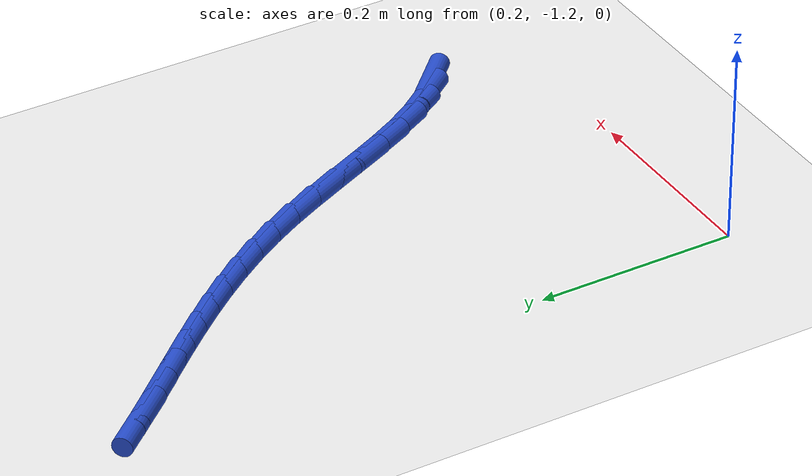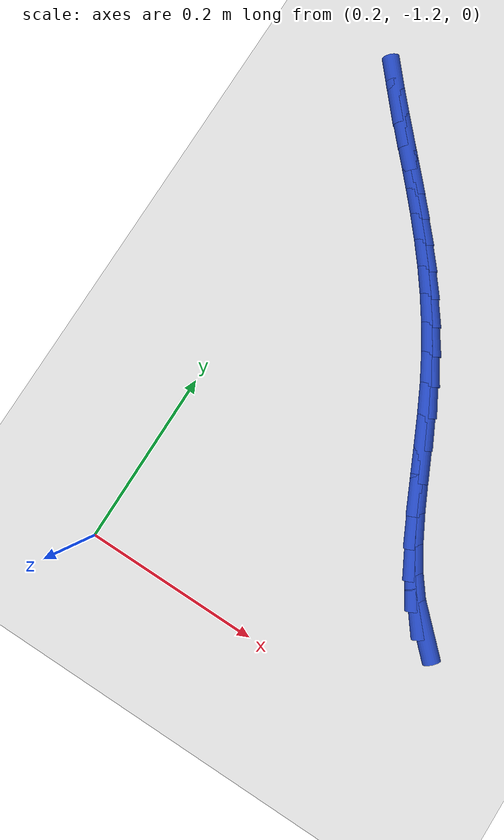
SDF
<sdf version="1.6">
 <world name="default">
  <model name="ground_plane">
   <static>1</static>
   <link name="link">
    <collision name="collision">
     <geometry><plane><normal>0 0 1</normal><size>100 100</size></plane></geometry>
     <surface><friction><ode><mu>100</mu><mu2>50</mu2></ode></friction></surface>
    </collision>
    <visual name="visual">
     <cast_shadows>0</cast_shadows>
     <geometry><plane><normal>0 0 1</normal><size>100 100</size></plane></geometry>
     <material>
      <script><uri>file://media/materials/scripts/gazebo.material</uri><name>Gazebo/WhiteGlow</name></script>
     </material>
    </visual>
   </link>
  </model>
  <model name="line">
   <link name="link_199">
    <pose>0.546680093921973 -1.0876846912998528 0.01 0 1.57 -0.7769015168338226</pose>
    <collision name="collision">
     <geometry><cylinder><radius>0.01</radius><length>0.08</length></cylinder></geometry>
    </collision>
    <visual name="visual">
     <material>
      <script><name>Gazebo/Blue</name><uri>file://media/materials/scripts/gazebo.material</uri></script>
     </material>
     <geometry><cylinder><radius>0.01</radius><length>0.08</length></cylinder></geometry>
    </visual>
   </link>
   <link name="link_200">
    <pose>0.5279173397532462 -1.0692380994017903 0.01 0 1.57 -0.9226001170882614</pose>
    <collision name="collision">
     <geometry><cylinder><radius>0.01</radius><length>0.08</length></cylinder></geometry>
    </collision>
    <visual name="visual">
     <material>
      <script><name>Gazebo/Blue</name><uri>file://media/materials/scripts/gazebo.material</uri></script>
     </material>
     <geometry><cylinder><radius>0.01</radius><length>0.08</length></cylinder></geometry>
    </visual>
   </link>
   <link name="link_201">
    <pose>0.510548654760953 -1.0463049666251683 0.01 0 1.57 -1.0201209616320972</pose>
    <collision name="collision">
     <geometry><cylinder><radius>0.01</radius><length>0.08</length></cylinder></geometry>
    </collision>
    <visual name="visual">
     <material>
      <script><name>Gazebo/Blue</name><uri>file://media/materials/scripts/gazebo.material</uri></script>
     </material>
     <geometry><cylinder><radius>0.01</radius><length>0.08</length></cylinder></geometry>
    </visual>
   </link>
   <link name="link_202">
    <pose>0.4942533647228687 -1.0197669117940908 0.01 0 1.57 -1.0825297338223148</pose>
    <collision name="collision">
     <geometry><cylinder><radius>0.01</radius><length>0.08</length></cylinder></geometry>
    </collision>
    <visual name="visual">
     <material>
      <script><name>Gazebo/Blue</name><uri>file://media/materials/scripts/gazebo.material</uri></script>
     </material>
     <geometry><cylinder><radius>0.01</radius><length>0.08</length></cylinder></geometry>
    </visual>
   </link>
   <link name="link_203">
    <pose>0.4787107954167692 -0.9905055537326637 0.01 0 1.57 -1.1185558222286482</pose>
    <collision name="collision">
     <geometry><cylinder><radius>0.01</radius><length>0.08</length></cylinder></geometry>
    </collision>
    <visual name="visual">
     <material>
      <script><name>Gazebo/Blue</name><uri>file://media/materials/scripts/gazebo.material</uri></script>
     </material>
     <geometry><cylinder><radius>0.01</radius><length>0.08</length></cylinder></geometry>
    </visual>
   </link>
   <link name="link_204">
    <pose>0.4636002726204299 -0.9594025112649904 0.01 0 1.57 -1.1332381834370144</pose>
    <collision name="collision">
     <geometry><cylinder><radius>0.01</radius><length>0.08</length></cylinder></geometry>
    </collision>
    <visual name="visual">
     <material>
      <script><name>Gazebo/Blue</name><uri>file://media/materials/scripts/gazebo.material</uri></script>
     </material>
     <geometry><cylinder><radius>0.01</radius><length>0.08</length></cylinder></geometry>
    </visual>
   </link>
   <link name="link_205">
    <pose>0.4486011221116268 -0.9273394032151755 0.01 0 1.57 -1.128841326987832</pose>
    <collision name="collision">
     <geometry><cylinder><radius>0.01</radius><length>0.08</length></cylinder></geometry>
    </collision>
    <visual name="visual">
     <material>
      <script><name>Gazebo/Blue</name><uri>file://media/materials/scripts/gazebo.material</uri></script>
     </material>
     <geometry><cylinder><radius>0.01</radius><length>0.08</length></cylinder></geometry>
    </visual>
   </link>
   <link name="link_206">
    <pose>0.43339266966813533 -0.8951978484073237 0.01 0 1.57 -1.105382806012585</pose>
    <collision name="collision">
     <geometry><cylinder><radius>0.01</radius><length>0.08</length></cylinder></geometry>
    </collision>
    <visual name="visual">
     <material>
      <script><name>Gazebo/Blue</name><uri>file://media/materials/scripts/gazebo.material</uri></script>
     </material>
     <geometry><cylinder><radius>0.01</radius><length>0.08</length></cylinder></geometry>
    </visual>
   </link>
   <link name="link_207">
    <pose>0.4176542410677314 -0.8638594656655395 0.01 0 1.57 -1.062865669417867</pose>
    <collision name="collision">
     <geometry><cylinder><radius>0.01</radius><length>0.08</length></cylinder></geometry>
    </collision>
    <visual name="visual">
     <material>
      <script><name>Gazebo/Blue</name><uri>file://media/materials/scripts/gazebo.material</uri></script>
     </material>
     <geometry><cylinder><radius>0.01</radius><length>0.08</length></cylinder></geometry>
    </visual>
   </link>
   <link name="link_208">
    <pose>0.40110052657702494 -0.8341210991854181 0.01 0 1.57 -1.0156095415495174</pose>
    <collision name="collision">
     <geometry><cylinder><radius>0.01</radius><length>0.08</length></cylinder></geometry>
    </collision>
    <visual name="visual">
     <material>
      <script><name>Gazebo/Blue</name><uri>file://media/materials/scripts/gazebo.material</uri></script>
     </material>
     <geometry><cylinder><radius>0.01</radius><length>0.08</length></cylinder></geometry>
    </visual>
   </link>
   <link name="link_209">
    <pose>0.383725821478326 -0.8061093329066925 0.01 0 1.57 -0.9719632155693374</pose>
    <collision name="collision">
     <geometry><cylinder><radius>0.01</radius><length>0.08</length></cylinder></geometry>
    </collision>
    <visual name="visual">
     <material>
      <script><name>Gazebo/Blue</name><uri>file://media/materials/scripts/gazebo.material</uri></script>
     </material>
     <geometry><cylinder><radius>0.01</radius><length>0.08</length></cylinder></geometry>
    </visual>
   </link>
   <link name="link_210">
    <pose>0.3656572516623953 -0.779632333456778 0.01 0 1.57 -0.9328559885622074</pose>
    <collision name="collision">
     <geometry><cylinder><radius>0.01</radius><length>0.08</length></cylinder></geometry>
    </collision>
    <visual name="visual">
     <material>
      <script><name>Gazebo/Blue</name><uri>file://media/materials/scripts/gazebo.material</uri></script>
     </material>
     <geometry><cylinder><radius>0.01</radius><length>0.08</length></cylinder></geometry>
    </visual>
   </link>
   <link name="link_211">
    <pose>0.3470227484693264 -0.754496336665556 0.01 0 1.57 -0.8990747687034799</pose>
    <collision name="collision">
     <geometry><cylinder><radius>0.01</radius><length>0.08</length></cylinder></geometry>
    </collision>
    <visual name="visual">
     <material>
      <script><name>Gazebo/Blue</name><uri>file://media/materials/scripts/gazebo.material</uri></script>
     </material>
     <geometry><cylinder><radius>0.01</radius><length>0.08</length></cylinder></geometry>
    </visual>
   </link>
   <link name="link_212">
    <pose>0.32795024323921235 -0.730507578362909 0.01 0 1.57 -0.8712987558637616</pose>
    <collision name="collision">
     <geometry><cylinder><radius>0.01</radius><length>0.08</length></cylinder></geometry>
    </collision>
    <visual name="visual">
     <material>
      <script><name>Gazebo/Blue</name><uri>file://media/materials/scripts/gazebo.material</uri></script>
     </material>
     <geometry><cylinder><radius>0.01</radius><length>0.08</length></cylinder></geometry>
    </visual>
   </link>
   <link name="link_213">
    <pose>0.30856766731214647 -0.7074722943787184 0.01 0 1.57 -0.850098357814293</pose>
    <collision name="collision">
     <geometry><cylinder><radius>0.01</radius><length>0.08</length></cylinder></geometry>
    </collision>
    <visual name="visual">
     <material>
      <script><name>Gazebo/Blue</name><uri>file://media/materials/scripts/gazebo.material</uri></script>
     </material>
     <geometry><cylinder><radius>0.01</radius><length>0.08</length></cylinder></geometry>
    </visual>
   </link>
   <link name="link_214">
    <pose>0.2890029520282218 -0.685196720542866 0.01 0 1.57 -0.8359424917245978</pose>
    <collision name="collision">
     <geometry><cylinder><radius>0.01</radius><length>0.08</length></cylinder></geometry>
    </collision>
    <visual name="visual">
     <material>
      <script><name>Gazebo/Blue</name><uri>file://media/materials/scripts/gazebo.material</uri></script>
     </material>
     <geometry><cylinder><radius>0.01</radius><length>0.08</length></cylinder></geometry>
    </visual>
   </link>
   <link name="link_215">
    <pose>0.26938402872753103 -0.6634870926852328 0.01 0 1.57 -0.829208910290549</pose>
    <collision name="collision">
     <geometry><cylinder><radius>0.01</radius><length>0.08</length></cylinder></geometry>
    </collision>
    <visual name="visual">
     <material>
      <script><name>Gazebo/Blue</name><uri>file://media/materials/scripts/gazebo.material</uri></script>
     </material>
     <geometry><cylinder><radius>0.01</radius><length>0.08</length></cylinder></geometry>
    </visual>
   </link>
   <link name="link_216">
    <pose>0.2498388287501684 -0.642149646635702 0.01 0 1.57 -0.8301920744013226</pose>
    <collision name="collision">
     <geometry><cylinder><radius>0.01</radius><length>0.08</length></cylinder></geometry>
    </collision>
    <visual name="visual">
     <material>
      <script><name>Gazebo/Blue</name><uri>file://media/materials/scripts/gazebo.material</uri></script>
     </material>
     <geometry><cylinder><radius>0.01</radius><length>0.08</length></cylinder></geometry>
    </visual>
   </link>
   <link name="link_217">
    <pose>0.23049528343622655 -0.6209906182241546 0.01 0 1.57 -0.8391037519775582</pose>
    <collision name="collision">
     <geometry><cylinder><radius>0.01</radius><length>0.08</length></cylinder></geometry>
    </collision>
    <visual name="visual">
     <material>
      <script><name>Gazebo/Blue</name><uri>file://media/materials/scripts/gazebo.material</uri></script>
     </material>
     <geometry><cylinder><radius>0.01</radius><length>0.08</length></cylinder></geometry>
    </visual>
   </link>
   <link name="link_218">
    <pose>0.21148132412579873 -0.5998162432804722 0.01 0 1.57 -0.8560627010708296</pose>
    <collision name="collision">
     <geometry><cylinder><radius>0.01</radius><length>0.08</length></cylinder></geometry>
    </collision>
    <visual name="visual">
     <material>
      <script><name>Gazebo/Blue</name><uri>file://media/materials/scripts/gazebo.material</uri></script>
     </material>
     <geometry><cylinder><radius>0.01</radius><length>0.08</length></cylinder></geometry>
    </visual>
   </link>
  </model>
 </world>
</sdf>
